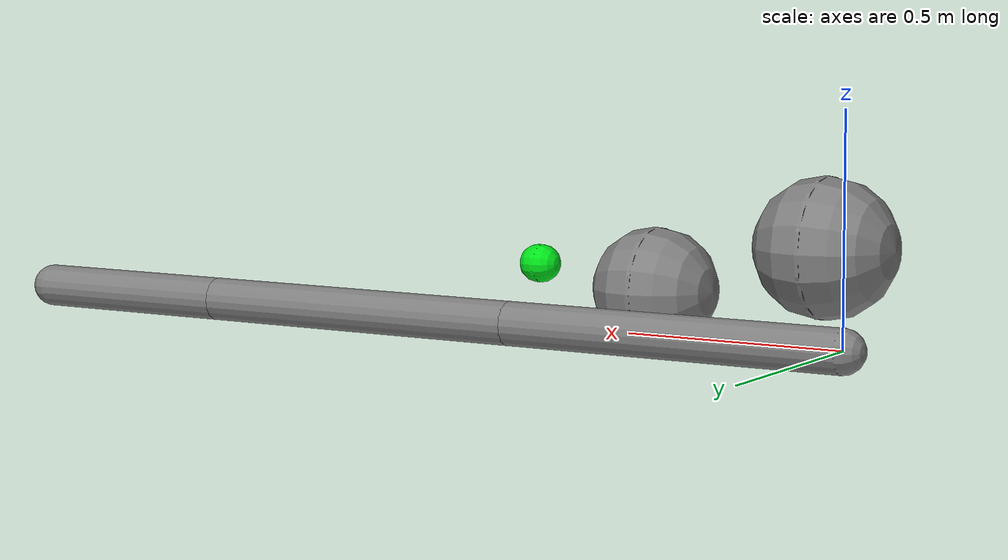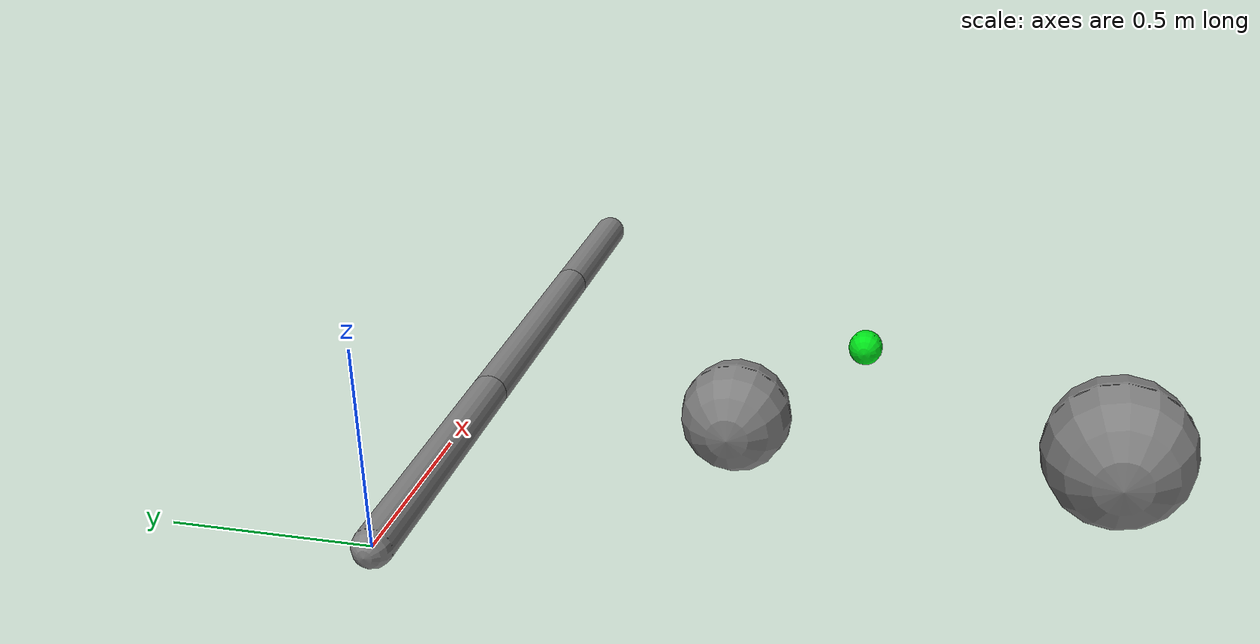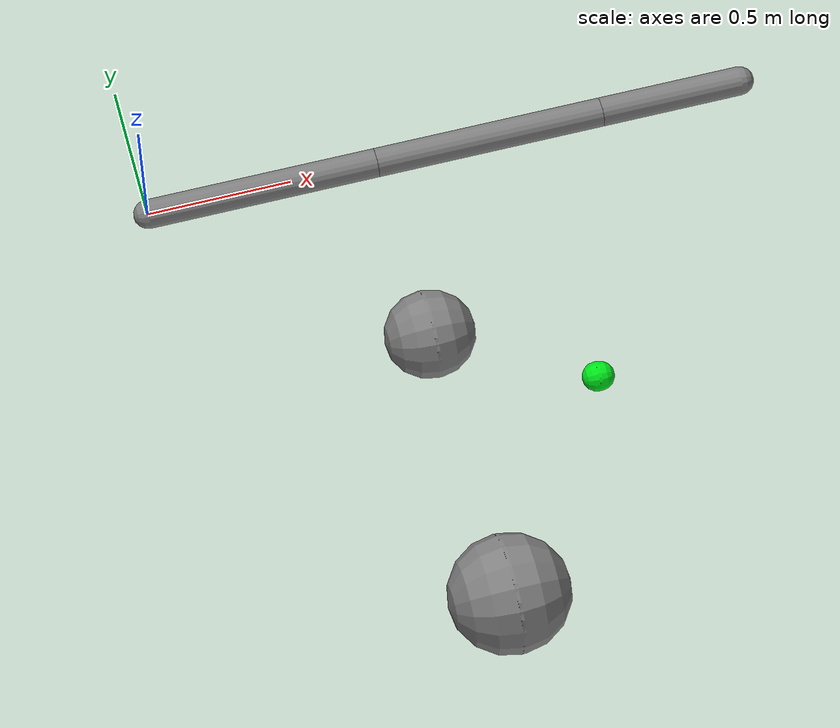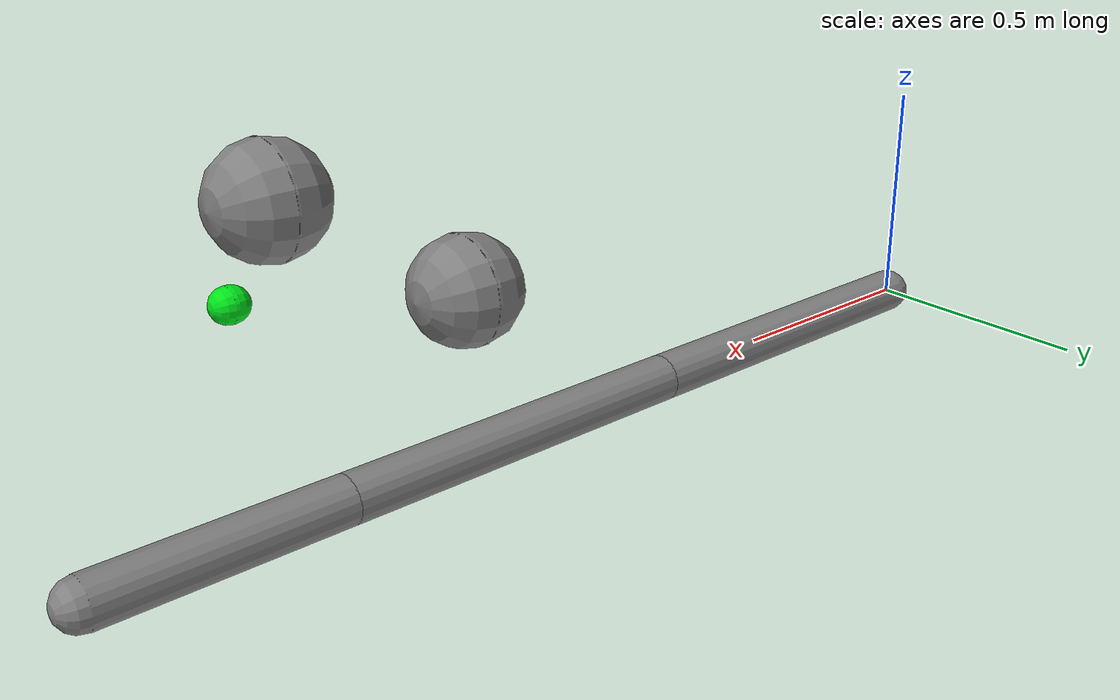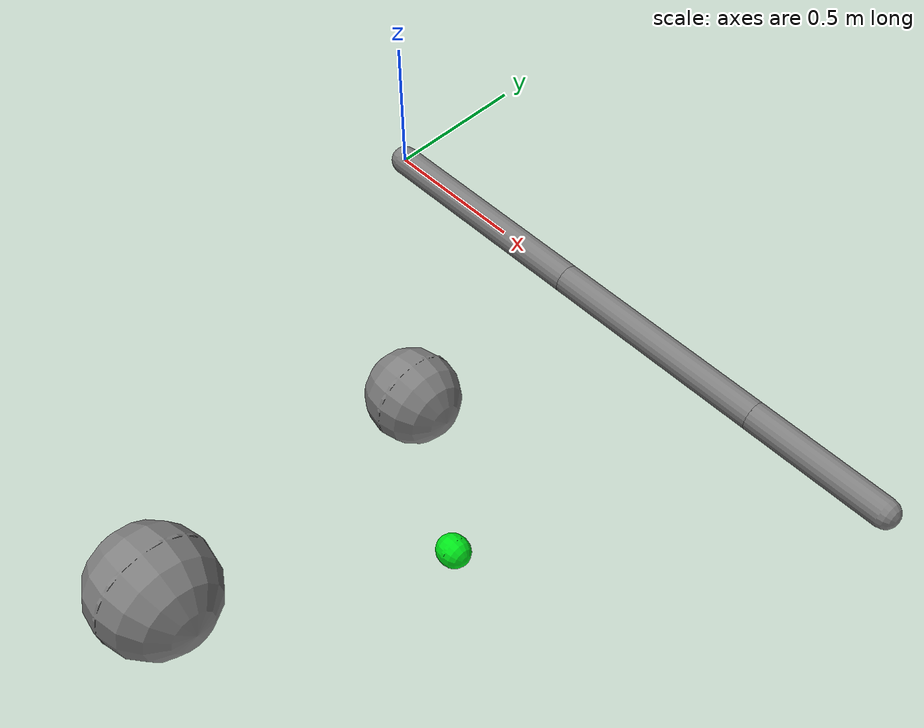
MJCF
<mujoco model="arm1">
  <compiler inertiafromgeom="true" angle="degree" coordinate="local"/>
  <option timestep="0.01" gravity="0 0.0 0" iterations='20'/>
  <!-- s_armature='.1 10' -->
  <default>
    <joint limited="false" damping="1" armature='0.1'/>
    <geom contype="2" conaffinity="1" condim="1" friction=".5 .1 .1"
          density="1000" margin="0.002" />
    <!-- Note for later: what made the insertion easy was changing mindist and compliance to 0.002/0.001 and enabling remotecontact -->
  </default>

  <!-- things that seem to help: remote contact, more interations, high mindist -->
<worldbody>
    <body name="shoulder" pos="0 0 0">
      <geom name="shoulder_geom" type="capsule" fromto="0 0 0 0.8 0 0" size="0.05"/>
      <joint name="shoulder_rot" type="hinge" pos="0 0 0" axis="0 0 -1"/>

      <body name="forearm" pos="0.8 0 0">
        <geom name="forearm_geom" type="capsule" fromto="0 0 0 0.8 0 0" size="0.05"/>
        <joint name="forearm_rot" type="hinge" pos="0 0 0" axis="0 0 -1"/>

        <body name="finger" pos="0.8 0 0">
          <geom name="finger_geom" type="capsule" fromto="0 0 0 0.5 0 0" size="0.05"/>
          <site name="finger_tip" pos="0.5 0 0" size="0.01"/>
          <joint name="finger_rot" type="hinge" pos="0 0 0" axis="0 0 -1"/>
        </body>
      </body>
    </body>

    <body name="lower_wall2" pos="0.8 -1.7 0">
      <geom name="wall2" type="capsule" size="0.2" fromto="0 0 0 0.01 0 0" contype="1"/>
    </body>

    <body name="leftobst2" pos="0.8 -0.7 0">
      <geom name="obst2" type="capsule" size="0.15" fromto="0 0 0 0.01 0 0" contype="1"/>
    </body>

    <body name="target" pos="1.3 -1.0 0">
      <geom name="target" type="capsule" size="0.05" rgba="0 0.9 0.1 1" fromto="0 0 0 0.01 0 0"/>
    </body>

            <!--site name="brick_center" pos="0 0 0"/-->

</worldbody>
  <actuator>
    <motor joint="shoulder_rot" ctrlrange="-200.0 200.0" ctrllimited="true"/>
    <motor joint="forearm_rot" ctrlrange="-200.0 200.0" ctrllimited="true"/>
    <motor joint="finger_rot" ctrlrange="-200.0 200.0" ctrllimited="true"/>
  </actuator>

</mujoco>
